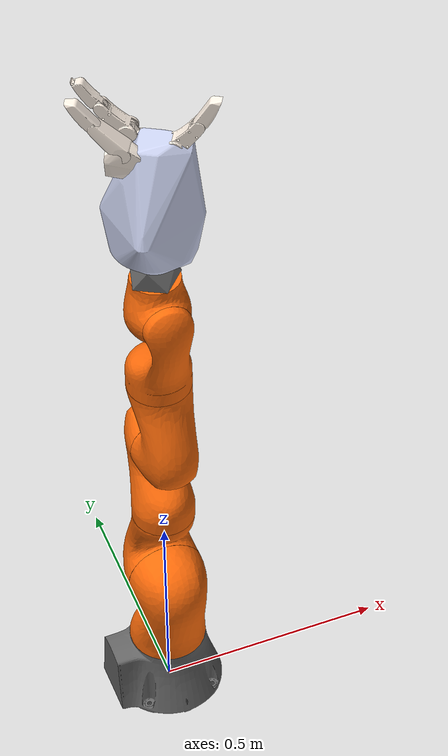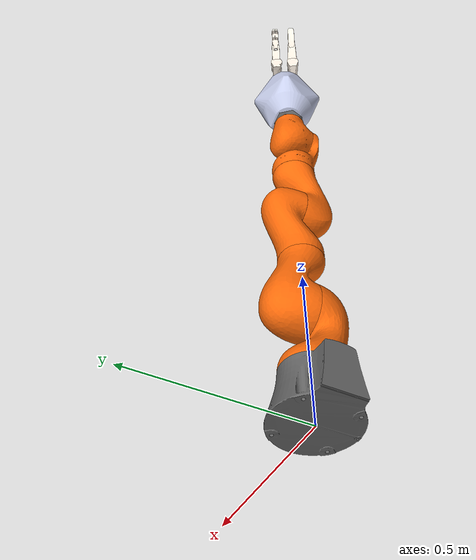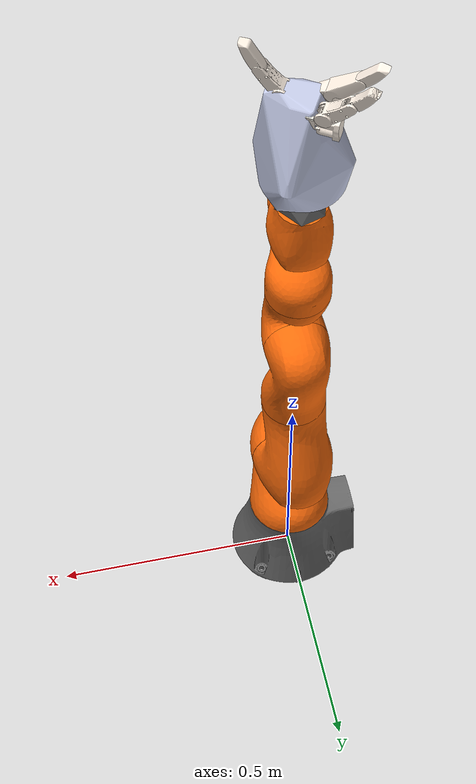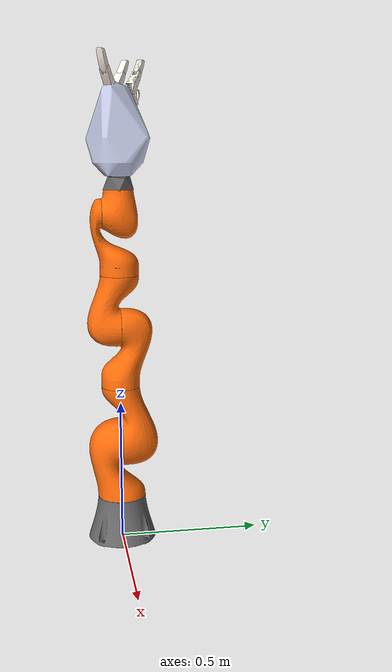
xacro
<?xml version="1.0"?>
<robot name="handarm" xmlns:xacro="http://www.ros.org/wiki/xacro">
  <xacro:arg name="use_gazebo" default="false" />
  <xacro:arg name="start_at_cylinder_pregrasp" default="false" />

  <xacro:include filename="$(find iiwa_description)/urdf/iiwa14.xacro" />
  <xacro:include filename="$(find iiwa_description)/urdf/hand.xacro" />

  <xacro:macro name="position_controlled_joint" params="name initial_value:=0.0">
    <joint name="${name}">
      <xacro:if value="$(arg use_gazebo)">
        <command_interface name="effort" />
      </xacro:if>
      <xacro:unless value="$(arg use_gazebo)">
        <command_interface name="position" />
      </xacro:unless>
      <state_interface name="position">
        <param name="initial_value">${initial_value}</param>
      </state_interface>
      <state_interface name="velocity" />
    </joint>
  </xacro:macro>

  <xacro:macro name="hand_controlled_joint" params="name initial_value:=0.0">
    <joint name="${name}">
      <xacro:if value="$(arg use_gazebo)">
        <command_interface name="effort" />
      </xacro:if>
      <xacro:unless value="$(arg use_gazebo)">
        <command_interface name="position" />
      </xacro:unless>
      <state_interface name="position">
        <param name="initial_value">${initial_value}</param>
      </state_interface>
      <state_interface name="velocity" />
    </joint>
  </xacro:macro>

  <xacro:macro name="mimic_controlled_joint" params="name source multiplier:=1.0 initial_value:=0.0">
    <joint name="${name}">
      <xacro:if value="$(arg use_gazebo)">
        <command_interface name="effort" />
      </xacro:if>
      <xacro:unless value="$(arg use_gazebo)">
        <param name="mimic">${source}</param>
        <param name="multiplier">${multiplier}</param>
      </xacro:unless>
      <state_interface name="position">
        <param name="initial_value">${initial_value}</param>
      </state_interface>
      <state_interface name="velocity" />
    </joint>
  </xacro:macro>

  <ros2_control name="KcgHandArmSystem" type="system">
    <hardware>
      <xacro:if value="$(arg use_gazebo)">
        <plugin>gazebo_ros2_control/GazeboSystem</plugin>
      </xacro:if>
      <xacro:unless value="$(arg use_gazebo)">
        <plugin>mock_components/GenericSystem</plugin>
        <param name="calculate_dynamics">false</param>
      </xacro:unless>
    </hardware>

    <xacro:if value="$(arg start_at_cylinder_pregrasp)">
      <xacro:position_controlled_joint name="iiwa_joint_1" initial_value="0.173683" />
      <xacro:position_controlled_joint name="iiwa_joint_2" initial_value="0.256410" />
      <xacro:position_controlled_joint name="iiwa_joint_3" initial_value="-0.236703" />
      <xacro:position_controlled_joint name="iiwa_joint_4" initial_value="-1.171082" />
      <xacro:position_controlled_joint name="iiwa_joint_5" initial_value="0.060182" />
      <xacro:position_controlled_joint name="iiwa_joint_6" initial_value="1.720685" />
      <xacro:position_controlled_joint name="iiwa_joint_7" initial_value="-0.046556" />

      <xacro:hand_controlled_joint name="f1j1" initial_value="1.0" />
      <xacro:hand_controlled_joint name="f1j2" initial_value="0.0" />
      <xacro:hand_controlled_joint name="f2j1" initial_value="0.0" />
      <xacro:hand_controlled_joint name="f3j2" initial_value="0.0" />

      <xacro:mimic_controlled_joint name="f3j1" source="f1j1" initial_value="1.0" />
      <xacro:mimic_controlled_joint name="f1j3" source="f1j2" initial_value="0.0" />
      <xacro:mimic_controlled_joint name="f2j2" source="f2j1" initial_value="0.0" />
      <xacro:mimic_controlled_joint name="f3j3" source="f3j2" initial_value="0.0" />
    </xacro:if>

    <xacro:unless value="$(arg start_at_cylinder_pregrasp)">
      <xacro:position_controlled_joint name="iiwa_joint_1" />
      <xacro:position_controlled_joint name="iiwa_joint_2" />
      <xacro:position_controlled_joint name="iiwa_joint_3" />
      <xacro:position_controlled_joint name="iiwa_joint_4" />
      <xacro:position_controlled_joint name="iiwa_joint_5" />
      <xacro:position_controlled_joint name="iiwa_joint_6" />
      <xacro:position_controlled_joint name="iiwa_joint_7" />

      <xacro:hand_controlled_joint name="f1j1" />
      <xacro:hand_controlled_joint name="f1j2" />
      <xacro:hand_controlled_joint name="f2j1" />
      <xacro:hand_controlled_joint name="f3j2" />

      <xacro:mimic_controlled_joint name="f3j1" source="f1j1" />
      <xacro:mimic_controlled_joint name="f1j3" source="f1j2" />
      <xacro:mimic_controlled_joint name="f2j2" source="f2j1" />
      <xacro:mimic_controlled_joint name="f3j3" source="f3j2" />
    </xacro:unless>

    <!-- One exported scalar per physical Wheatstone-bridge channel. -->
    <xacro:if value="$(arg use_gazebo)">
      <sensor name="f1j2">
        <state_interface name="torque.z" />
      </sensor>
      <sensor name="f2j1">
        <state_interface name="torque.z" />
      </sensor>
      <sensor name="f3j2">
        <state_interface name="torque.z" />
      </sensor>
    </xacro:if>
  </ros2_control>

  <xacro:if value="$(arg use_gazebo)">
    <gazebo>
      <self_collide>false</self_collide>
      <plugin filename="libgazebo_ros2_control.so" name="gazebo_ros2_control">
        <robot_param>robot_description</robot_param>
        <robot_param_node>robot_state_publisher</robot_param_node>
        <parameters>$(find kcg_moveit1)/config/ros2_controllers.yaml</parameters>
      </plugin>
    </gazebo>
  </xacro:if>
</robot>

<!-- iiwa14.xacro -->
<!-- |    This document was autogenerated by xacro from iiwa14.urdf.xacro              | -->
<!-- |    EDITING THIS FILE BY HAND IS NOT RECOMMENDED                                 | -->
<robot name="iiwa14" xmlns:xacro="http://www.ros.org/wiki/xacro">
  <material name="Black">
    <color rgba="0.0 0.0 0.0 1.0"/>
  </material>
  <material name="Blue">
    <color rgba="0.0 0.0 0.8 1.0"/>
  </material>
  <material name="Green">
    <color rgba="0.0 0.8 0.0 1.0"/>
  </material>
  <material name="Grey">
    <color rgba="0.4 0.4 0.4 1.0"/>
  </material>
  <material name="Orange">
    <color rgba="1.0 0.423529411765 0.0392156862745 1.0"/>
  </material>
  <material name="Brown">
    <color rgba="0.870588235294 0.811764705882 0.764705882353 1.0"/>
  </material>
  <material name="Red">
    <color rgba="0.8 0.0 0.0 1.0"/>
  </material>
  <material name="White">
    <color rgba="1.0 1.0 1.0 1.0"/>
  </material>
  <!-- Fix to world just for testing -->
  <link name="world"/>
  <!--joint between {parent} and link_0-->
  <joint name="world_iiwa_joint" type="fixed">
    <origin rpy="0 0 0" xyz="0 0 0"/>
    <parent link="world"/>
    <child link="iiwa_link_0"/>
  </joint>
  <link name="iiwa_link_0">
    <inertial>
      <origin rpy="0 0 0" xyz="-0.1 0 0.07"/>
      <mass value="5"/>
      <inertia ixx="0.05" ixy="0" ixz="0" iyy="0.06" iyz="0" izz="0.03"/>
    </inertial>
    <visual>
      <origin rpy="0 0 0" xyz="0 0 0"/>
      <geometry>
        <mesh filename="package://iiwa_description/meshes/iiwa14/visual/link_0.stl"/>
      </geometry>
      <material name="Grey"/>
    </visual>
    <collision>
      <origin rpy="0 0 0" xyz="0 0 0"/>
      <geometry>
        <mesh filename="package://iiwa_description/meshes/iiwa14/collision/link_0_s.stl"/>
      </geometry>
      <material name="Grey"/>
    </collision>
  </link>
  <!-- joint between link_0 and link_1 -->
  <joint name="iiwa_joint_1" type="revolute">
    <parent link="iiwa_link_0"/>
    <child link="iiwa_link_1"/>
    <origin rpy="0 0 0" xyz="0 0 0.1575"/>
    <axis xyz="0 0 1"/>
    <limit effort="300" lower="-2.96705972839" upper="2.96705972839" velocity="10"/>
    <safety_controller k_position="100" k_velocity="2" soft_lower_limit="-2.93215314335" soft_upper_limit="2.93215314335"/>
    <dynamics damping="0.5"/>
  </joint>
  <link name="iiwa_link_1">
    <inertial>
      <origin rpy="0 0 0" xyz="0 -0.03 0.12"/>
      <mass value="4"/>
      <inertia ixx="0.1" ixy="0" ixz="0" iyy="0.09" iyz="0" izz="0.02"/>
    </inertial>
    <visual>
      <origin rpy="0 0 0" xyz="0 0 0"/>
      <geometry>
        <mesh filename="package://iiwa_description/meshes/iiwa14/visual/link_1.stl"/>
      </geometry>
      <material name="Orange"/>
    </visual>
    <collision>
      <origin rpy="0 0 0" xyz="0 0 0"/>
      <geometry>
        <mesh filename="package://iiwa_description/meshes/iiwa14/collision/link_1_s.stl"/>
      </geometry>
      <material name="Orange"/>
    </collision>
  </link>
  <!-- joint between link_1 and link_2 -->
  <joint name="iiwa_joint_2" type="revolute">
    <parent link="iiwa_link_1"/>
    <child link="iiwa_link_2"/>
    <origin rpy="1.57079632679   0 3.14159265359" xyz="0 0 0.2025"/>
    <axis xyz="0 0 1"/>
    <limit effort="300" lower="-2.09439510239" upper="2.09439510239" velocity="10"/>
    <safety_controller k_position="100" k_velocity="2" soft_lower_limit="-2.05948851735" soft_upper_limit="2.05948851735"/>
    <dynamics damping="0.5"/>
  </joint>
  <link name="iiwa_link_2">
    <inertial>
      <origin rpy="0 0 0" xyz="0.0003 0.059 0.042"/>
      <mass value="4"/>
      <inertia ixx="0.05" ixy="0" ixz="0" iyy="0.018" iyz="0" izz="0.044"/>
    </inertial>
    <visual>
      <origin rpy="0 0 0" xyz="0 0 0"/>
      <geometry>
        <mesh filename="package://iiwa_description/meshes/iiwa14/visual/link_2.stl"/>
      </geometry>
      <material name="Orange"/>
    </visual>
    <collision>
      <origin rpy="0 0 0" xyz="0 0 0"/>
      <geometry>
        <mesh filename="package://iiwa_description/meshes/iiwa14/collision/link_2_s.stl"/>
      </geometry>
      <material name="Orange"/>
    </collision>
  </link>
  <!-- joint between link_2 and link_3 -->
  <joint name="iiwa_joint_3" type="revolute">
    <parent link="iiwa_link_2"/>
    <child link="iiwa_link_3"/>
    <origin rpy="1.57079632679 0 3.14159265359" xyz="0 0.2045 0"/>
    <axis xyz="0 0 1"/>
    <limit effort="300" lower="-2.96705972839" upper="2.96705972839" velocity="10"/>
    <safety_controller k_position="100" k_velocity="2" soft_lower_limit="-2.93215314335" soft_upper_limit="2.93215314335"/>
    <dynamics damping="0.5"/>
  </joint>
  <link name="iiwa_link_3">
    <inertial>
      <origin rpy="0 0 0" xyz="0 0.03 0.13"/>
      <mass value="3"/>
      <inertia ixx="0.08" ixy="0" ixz="0" iyy="0.075" iyz="0" izz="0.01"/>
    </inertial>
    <visual>
      <origin rpy="0 0 0" xyz="0 0 0"/>
      <geometry>
        <mesh filename="package://iiwa_description/meshes/iiwa14/visual/link_3.stl"/>
      </geometry>
      <material name="Orange"/>
    </visual>
    <collision>
      <origin rpy="0 0 0" xyz="0 0 0"/>
      <geometry>
        <mesh filename="package://iiwa_description/meshes/iiwa14/collision/link_3_s.stl"/>
      </geometry>
      <material name="Orange"/>
    </collision>
  </link>
  <!-- joint between link_3 and link_4 -->
  <joint name="iiwa_joint_4" type="revolute">
    <parent link="iiwa_link_3"/>
    <child link="iiwa_link_4"/>
    <origin rpy="1.57079632679 0 0" xyz="0 0 0.2155"/>
    <axis xyz="0 0 1"/>
    <limit effort="300" lower="-2.09439510239" upper="2.09439510239" velocity="10"/>
    <safety_controller k_position="100" k_velocity="2" soft_lower_limit="-2.05948851735" soft_upper_limit="2.05948851735"/>
    <dynamics damping="0.5"/>
  </joint>
  <link name="iiwa_link_4">
    <inertial>
      <origin rpy="0 0 0" xyz="0 0.067 0.034"/>
      <mass value="2.7"/>
      <inertia ixx="0.03" ixy="0" ixz="0" iyy="0.01" iyz="0" izz="0.029"/>
    </inertial>
    <visual>
      <origin rpy="0 0 0" xyz="0 0 0"/>
      <geometry>
        <mesh filename="package://iiwa_description/meshes/iiwa14/visual/link_4.stl"/>
      </geometry>
      <material name="Orange"/>
    </visual>
    <collision>
      <origin rpy="0 0 0" xyz="0 0 0"/>
      <geometry>
        <mesh filename="package://iiwa_description/meshes/iiwa14/collision/link_4_s.stl"/>
      </geometry>
      <material name="Orange"/>
    </collision>
  </link>
  <!-- joint between link_4 and link_5 -->
  <joint name="iiwa_joint_5" type="revolute">
    <parent link="iiwa_link_4"/>
    <child link="iiwa_link_5"/>
    <origin rpy="-1.57079632679 3.14159265359 0" xyz="0 0.1845 0"/>
    <axis xyz="0 0 1"/>
    <limit effort="300" lower="-2.96705972839" upper="2.96705972839" velocity="10"/>
    <safety_controller k_position="100" k_velocity="2" soft_lower_limit="-2.93215314335" soft_upper_limit="2.93215314335"/>
    <dynamics damping="0.5"/>
  </joint>
  <link name="iiwa_link_5">
    <inertial>
      <origin rpy="0 0 0" xyz="0.0001 0.021 0.076"/>
      <mass value="1.7"/>
      <inertia ixx="0.02" ixy="0" ixz="0" iyy="0.018" iyz="0" izz="0.005"/>
    </inertial>
    <visual>
      <origin rpy="0 0 0" xyz="0 0 0"/>
      <geometry>
        <mesh filename="package://iiwa_description/meshes/iiwa14/visual/link_5.stl"/>
      </geometry>
      <material name="Orange"/>
    </visual>
    <collision>
      <origin rpy="0 0 0" xyz="0 0 0"/>
      <geometry>
        <mesh filename="package://iiwa_description/meshes/iiwa14/collision/link_5_s.stl"/>
      </geometry>
      <material name="Orange"/>
    </collision>
  </link>
  <!-- joint between link_5 and link_6 -->
  <joint name="iiwa_joint_6" type="revolute">
    <parent link="iiwa_link_5"/>
    <child link="iiwa_link_6"/>
    <origin rpy="1.57079632679 0 0" xyz="0 0 0.2155"/>
    <axis xyz="0 0 1"/>
    <limit effort="300" lower="-2.09439510239" upper="2.09439510239" velocity="10"/>
    <safety_controller k_position="100" k_velocity="2" soft_lower_limit="-2.05948851735" soft_upper_limit="2.05948851735"/>
    <dynamics damping="0.5"/>
  </joint>
  <link name="iiwa_link_6">
    <inertial>
      <origin rpy="0 0 0" xyz="0 0.0006 0.0004"/>
      <mass value="1.8"/>
      <inertia ixx="0.005" ixy="0" ixz="0" iyy="0.0036" iyz="0" izz="0.0047"/>
    </inertial>
    <visual>
      <origin rpy="0 0 0" xyz="0 0 0"/>
      <geometry>
        <mesh filename="package://iiwa_description/meshes/iiwa14/visual/link_6.stl"/>
      </geometry>
      <material name="Orange"/>
    </visual>
    <collision>
      <origin rpy="0 0 0" xyz="0 0 0"/>
      <geometry>
        <mesh filename="package://iiwa_description/meshes/iiwa14/collision/link_6_s.stl"/>
      </geometry>
      <material name="Orange"/>
    </collision>
  </link>
  <!-- joint between link_6 and link_7 -->
  <joint name="iiwa_joint_7" type="revolute">
    <parent link="iiwa_link_6"/>
    <child link="iiwa_link_7"/>
    <origin rpy="-1.57079632679 3.14159265359 0" xyz="0 0.081 0"/>
    <axis xyz="0 0 1"/>
    <limit effort="300" lower="-3.05432619099" upper="3.05432619099" velocity="10"/>
    <safety_controller k_position="100" k_velocity="2" soft_lower_limit="-3.01941960595" soft_upper_limit="3.01941960595"/>
    <dynamics damping="0.5"/>
  </joint>
  <link name="iiwa_link_7">
    <inertial>
      <origin rpy="0 0 0" xyz="0 0 0.02"/>
      <mass value="0.3"/>
      <inertia ixx="0.001" ixy="0" ixz="0" iyy="0.001" iyz="0" izz="0.001"/>
    </inertial>
    <visual>
      <origin rpy="0 0 0" xyz="0 0 0"/>
      <geometry>
        <mesh filename="package://iiwa_description/meshes/iiwa14/visual/link_7.stl"/>
      </geometry>
      <material name="Grey"/>
    </visual>
    <collision>
      <origin rpy="0 0 0" xyz="0 0 0"/>
      <geometry>
        <mesh filename="package://iiwa_description/meshes/iiwa14/collision/link_7_s.stl"/>
      </geometry>
      <material name="Grey"/>
    </collision>
  </link>
  <joint name="iiwa_joint_ee" type="fixed">
    <parent link="iiwa_link_7"/>
    <child link="iiwa_link_ee"/>
    <origin rpy="0 0 0" xyz="0 0 0.045"/>
  </joint>
  <link name="iiwa_link_ee">
    </link>
</robot>

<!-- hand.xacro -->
<robot
  name="exurdf2" xmlns:xacro="http://www.ros.org/wiki/xacro">
  <link
    name="handbase_link">
    <inertial>
      <origin
        xyz="0.0068536 -0.0032827 0.15427"
        rpy="0 0 0" />
      <mass
        value="1.3106" />
      <inertia
        ixx="0.0017579"
        ixy="3.605E-05"
        ixz="-6.2211E-06"
        iyy="0.0017392"
        iyz="-5.6815E-06"
        izz="0.0031039" />
    </inertial>
    <visual>
      <origin
        xyz="0 0 0"
        rpy="0 0 0" />
      <geometry>
        <mesh
          filename="package://iiwa_description/meshes/hand/handbase_link.STL" />
      </geometry>
      <material
        name="">
        <color
          rgba="0.79216 0.81961 0.93333 1" />
      </material>
    </visual>
    <collision>
      <origin
        xyz="0 0 0"
        rpy="0 0 0" />
      <geometry>
        <mesh
          filename="package://iiwa_description/meshes/hand/collision/handbase_link_convex.stl" />
      </geometry>
    </collision>
  </link>
  <link
    name="f1Link1">
    <inertial>
      <origin
        xyz="-0.027217 0.015636 -0.018412"
        rpy="0 0 0" />
      <mass
        value="0.1943" />
      <inertia
        ixx="5.0231E-05"
        ixy="-4.4869E-06"
        ixz="-8.2062E-07"
        iyy="5.5471E-05"
        iyz="5.7019E-07"
        izz="3.5768E-05" />
    </inertial>
    <visual>
      <origin
        xyz="0 0 0"
        rpy="0 0 0" />
      <geometry>
        <mesh
          filename="package://iiwa_description/meshes/hand/f1Link1.STL" />
      </geometry>
      <material
        name="">
        <color
          rgba="1 0.94902 0.89804 1" />
      </material>
    </visual>
    <collision>
      <origin
        xyz="0 0 0"
        rpy="0 0 0" />
      <geometry>
        <mesh
          filename="package://iiwa_description/meshes/hand/collision/f1Link1_convex.stl" />
      </geometry>
    </collision>
  </link>
  <joint
    name="f1j1"
    type="revolute">
    <origin
      xyz="-0.03097 -0.016751 0.2893"
      rpy="0 0 0" />
    <parent
      link="handbase_link" />
    <child
      link="f1Link1" />
    <axis
      xyz="0 0 1" />
    <limit
      lower="0"
      upper="1.57"
      effort="100"
      velocity="4" />
    <dynamics damping="0.3" friction="0.05" />
  </joint>
  <link
    name="f1Link2">
    <inertial>
      <origin
        xyz="-0.02357 -0.021421 0.018942"
        rpy="0 0 0" />
      <mass
        value="0.073035" />
      <inertia
        ixx="2.3141E-05"
        ixy="1.5948E-05"
        ixz="1.2581E-07"
        iyy="2.3914E-05"
        iyz="1.1946E-07"
        izz="4.4461E-05" />
    </inertial>
    <visual>
      <origin
        xyz="0 0 0"
        rpy="0 0 0" />
      <geometry>
        <mesh
          filename="package://iiwa_description/meshes/hand/f1Link2.STL" />
      </geometry>
      <material
        name="">
        <color
          rgba="1 0.94902 0.89804 1" />
      </material>
    </visual>
    <collision>
      <origin
        xyz="0 0 0"
        rpy="0 0 0" />
      <geometry>
        <mesh
          filename="package://iiwa_description/meshes/hand/collision/f1Link2_convex.stl" />
      </geometry>
    </collision>
  </link>
  <joint
    name="f1j2"
    type="revolute">
    <origin
      xyz="-0.03233 -0.0018879 0.006"
      rpy="-1.5708 8.7266E-05 -0.5236" />
    <parent
      link="f1Link1" />
    <child
      link="f1Link2" />
    <axis
      xyz="0 0 1" />
    <limit
      lower="0"
      upper="1.3963"
      effort="100"
      velocity="4" />
    <dynamics damping="0.3" friction="0.05" />
  </joint>
  <link
    name="f1Link3">
    <inertial>
      <origin
        xyz="-0.016803 -0.020891 0.011999"
        rpy="0 0 0" />
      <mass
        value="0.057879" />
      <inertia
        ixx="1.6904E-05"
        ixy="9.7694E-06"
        ixz="9.1101E-09"
        iyy="1.2703E-05"
        iyz="1.2096E-08"
        izz="2.4528E-05" />
    </inertial>
    <visual>
      <origin
        xyz="0 0 0"
        rpy="0 0 0" />
      <geometry>
        <mesh
          filename="package://iiwa_description/meshes/hand/f1Link3.STL" />
      </geometry>
      <material
        name="">
        <color
          rgba="1 0.94902 0.89804 1" />
      </material>
    </visual>
    <collision>
      <origin xyz="0 0 0" rpy="0 0 0" />
      <geometry>
        <mesh filename="package://iiwa_description/meshes/hand/collision/f1Link3_convex.stl" />
      </geometry>
    </collision>
  </link>
  <joint
    name="f1j3"
    type="revolute">
    <origin
      xyz="-0.049957 -0.049034 0.0058"
      rpy="0 0 0" />
    <parent
      link="f1Link2" />
    <child
      link="f1Link3" />
    <axis
      xyz="0 0 1" />
    <limit
      lower="0"
      upper="1.3963"
      effort="100"
      velocity="4" />
    <dynamics damping="0.3" friction="0.05" />
    <mimic
      joint="f1j2"
      multiplier="1"
      offset="0" />
  </joint>
  <link
    name="f2Link1">
    <inertial>
      <origin
        xyz="-0.021392 -0.023597 -0.016858"
        rpy="0 0 0" />
      <mass
        value="0.073035" />
      <inertia
        ixx="2.6213E-05"
        ixy="1.5725E-05"
        ixz="1.1369E-07"
        iyy="2.0842E-05"
        iyz="1.3105E-07"
        izz="4.4461E-05" />
    </inertial>
    <visual>
      <origin
        xyz="0 0 0"
        rpy="0 0 0" />
      <geometry>
        <mesh
          filename="package://iiwa_description/meshes/hand/f2Link1.STL" />
      </geometry>
      <material
        name="">
        <color
          rgba="1 0.94902 0.89804 1" />
      </material>
    </visual>
    <collision>
      <origin
        xyz="0 0 0"
        rpy="0 0 0" />
      <geometry>
        <mesh
          filename="package://iiwa_description/meshes/hand/collision/f2Link1_convex.stl" />
      </geometry>
    </collision>
  </link>
  <joint
    name="f2j1"
    type="revolute">
    <origin
      xyz="0.03153 -0.038988 0.2953"
      rpy="-1.5708 -8.7266E-05 2.618" />
    <parent
      link="handbase_link" />
    <child
      link="f2Link1" />
    <axis
      xyz="0 0 1" />
    <limit
      lower="0"
      upper="1.3963"
      effort="100"
      velocity="4" />
    <dynamics damping="0.3" friction="0.05" />
  </joint>
  <link
    name="f2Link2">
    <inertial>
      <origin
        xyz="-0.012481 -0.023727 -0.012001"
        rpy="0 0 0" />
      <mass
        value="0.057879" />
      <inertia
        ixx="2.0429E-05"
        ixy="8.2585E-06"
        ixz="6.6195E-09"
        iyy="9.1773E-06"
        iyz="1.3619E-08"
        izz="2.4528E-05" />
    </inertial>
    <visual>
      <origin
        xyz="0 0 0"
        rpy="0 0 0" />
      <geometry>
        <mesh
          filename="package://iiwa_description/meshes/hand/f2Link2.STL" />
      </geometry>
      <material
        name="">
        <color
          rgba="1 0.94902 0.89804 1" />
      </material>
    </visual>
    <collision>
      <origin xyz="0 0 0" rpy="0 0 0" />
      <geometry>
        <mesh filename="package://iiwa_description/meshes/hand/collision/f2Link2_convex.stl" />
      </geometry>
    </collision>
  </link>
  <joint
    name="f2j2"
    type="revolute">
    <origin
      xyz="-0.04499 -0.053627 -0.006"
      rpy="0 0 0" />
    <parent
      link="f2Link1" />
    <child
      link="f2Link2" />
    <axis
      xyz="0 0 1" />
    <limit
      lower="0"
      upper="1.3963"
      effort="100"
      velocity="4" />
    <dynamics damping="0.3" friction="0.05" />
    <mimic
      joint="f2j1"
      multiplier="1"
      offset="0" />
  </joint>
  <link name="f3Link1">
    <inertial>
      <origin rpy="0 0 0" xyz="0.027217 0.015636 0.018412" />
      <mass value="0.1943" />
      <inertia ixx="5.0231E-05" ixy="4.4869E-06" ixz="-8.2062E-07" iyy="5.5471E-05" iyz="-5.7019E-07" izz="3.5768E-05" />
    </inertial>
    <visual>
      <origin
        xyz="0 0 0"
        rpy="0 0 0" />
      <geometry>
        <mesh
          filename="package://iiwa_description/meshes/hand/f3Link1.STL" />
      </geometry>
      <material
        name="">
        <color
          rgba="1 0.94902 0.89804 1" />
      </material>
    </visual>
    <collision>
      <origin
        xyz="0 0 0"
        rpy="0 0 0" />
      <geometry>
        <mesh
          filename="package://iiwa_description/meshes/hand/collision/f3Link1_convex.stl" />
      </geometry>
    </collision>
  </link>
  <joint
    name="f3j1"
    type="revolute">
    <origin
      xyz="-0.00097813 0.035196 0.2893"
      rpy="-3.1416 0 3.1416" />
    <parent
      link="handbase_link" />
    <child
      link="f3Link1" />
    <axis
      xyz="0 0 1" />
    <limit
      lower="0"
      upper="1.57"
      effort="100"
      velocity="4" />
    <dynamics damping="0.3" friction="0.05" />
    <mimic
      joint="f1j1"
      multiplier="1"
      offset="0" />
  </joint>
  <link
    name="f3Link2">
    <inertial>
      <origin
        xyz="-0.02357 -0.021421 0.018942"
        rpy="0 0 0" />
      <mass
        value="0.073035" />
      <inertia
        ixx="2.3141E-05"
        ixy="1.5948E-05"
        ixz="1.2581E-07"
        iyy="2.3914E-05"
        iyz="1.1946E-07"
        izz="4.4461E-05" />
    </inertial>
    <visual>
      <origin
        xyz="0 0 0"
        rpy="0 0 0" />
      <geometry>
        <mesh
          filename="package://iiwa_description/meshes/hand/f3Link2.STL" />
      </geometry>
      <material
        name="">
        <color
          rgba="1 0.94902 0.89804 1" />
      </material>
    </visual>
    <collision>
      <origin
        xyz="0 0 0"
        rpy="0 0 0" />
      <geometry>
        <mesh
          filename="package://iiwa_description/meshes/hand/collision/f3Link2_convex.stl" />
      </geometry>
    </collision>
  </link>
  <joint
    name="f3j2"
    type="revolute">
    <origin
      xyz="0.03233 -0.0018879 -0.006"
      rpy="1.5708 -8.7266E-05 -2.618" />
    <parent
      link="f3Link1" />
    <child
      link="f3Link2" />
    <axis
      xyz="0 0 1" />
    <limit
      lower="0"
      upper="1.3963"
      effort="100"
      velocity="4" />
    <dynamics damping="0.3" friction="0.05" />
  </joint>
  <link
    name="f3Link3">
    <inertial>
      <origin
        xyz="-0.016803 -0.020891 0.011999"
        rpy="0 0 0" />
      <mass
        value="0.057879" />
      <inertia
        ixx="1.6904E-05"
        ixy="9.7694E-06"
        ixz="9.1101E-09"
        iyy="1.2703E-05"
        iyz="1.2096E-08"
        izz="2.4528E-05" />
    </inertial>
    <visual>
      <origin
        xyz="0 0 0"
        rpy="0 0 0" />
      <geometry>
        <mesh
          filename="package://iiwa_description/meshes/hand/f3Link3.STL" />
      </geometry>
      <material
        name="">
        <color
          rgba="1 0.94902 0.89804 1" />
      </material>
    </visual>
    <collision>
      <origin xyz="0 0 0" rpy="0 0 0" />
      <geometry>
        <mesh filename="package://iiwa_description/meshes/hand/collision/f3Link3_convex.stl" />
      </geometry>
    </collision>
  </link>
  <joint
    name="f3j3"
    type="revolute">
    <origin
      xyz="-0.049957 -0.049034 0.0058"
      rpy="0 0 0" />
    <parent
      link="f3Link2" />
    <child
      link="f3Link3" />
    <axis
      xyz="0 0 1" />
    <limit
      lower="0"
      upper="1.3963"
      effort="100"
      velocity="4" />
    <dynamics damping="0.3" friction="0.05" />
    <mimic
      joint="f3j2"
      multiplier="1"
      offset="0" />
  </joint>
  <joint name="hand2arm" type="fixed">
    <origin rpy="0 0 0" xyz="0 0 0"/>
    <parent link="iiwa_link_ee"/>
    <child link="handbase_link"/>
  </joint>

  <link name="grasp_tcp"/>
  <joint name="handbase_to_grasp_tcp" type="fixed">
    <origin rpy="0 0 0" xyz="0 0 0.400"/>
    <parent link="handbase_link"/>
    <child link="grasp_tcp"/>
  </joint>

  <gazebo reference="f1j2">
    <sensor name="f1j2" type="force_torque">
      <always_on>true</always_on>
      <update_rate>100</update_rate>
      <visualize>false</visualize>
      <force_torque>
        <frame>child</frame>
        <measure_direction>child_to_parent</measure_direction>
      </force_torque>
    </sensor>
  </gazebo>

  <gazebo reference="f2j1">
    <sensor name="f2j1" type="force_torque">
      <always_on>true</always_on>
      <update_rate>100</update_rate>
      <visualize>false</visualize>
      <force_torque>
        <frame>child</frame>
        <measure_direction>child_to_parent</measure_direction>
      </force_torque>
    </sensor>
  </gazebo>

  <gazebo reference="f3j2">
    <sensor name="f3j2" type="force_torque">
      <always_on>true</always_on>
      <update_rate>100</update_rate>
      <visualize>false</visualize>
      <force_torque>
        <frame>child</frame>
        <measure_direction>child_to_parent</measure_direction>
      </force_torque>
    </sensor>
  </gazebo>

  <!-- Contact properties for the original terminal-link collision meshes. -->
  <gazebo reference="f1Link3">
    <mu1>1.4</mu1>
    <mu2>1.4</mu2>
    <kp>1000000</kp>
    <kd>100</kd>
    <maxVel>0.05</maxVel>
    <minDepth>0.001</minDepth>
  </gazebo>

  <gazebo reference="f2Link2">
    <mu1>1.4</mu1>
    <mu2>1.4</mu2>
    <kp>1000000</kp>
    <kd>100</kd>
    <maxVel>0.05</maxVel>
    <minDepth>0.001</minDepth>
  </gazebo>

  <gazebo reference="f3Link3">
    <mu1>1.4</mu1>
    <mu2>1.4</mu2>
    <kp>1000000</kp>
    <kd>100</kd>
    <maxVel>0.05</maxVel>
    <minDepth>0.001</minDepth>
  </gazebo>
</robot>
